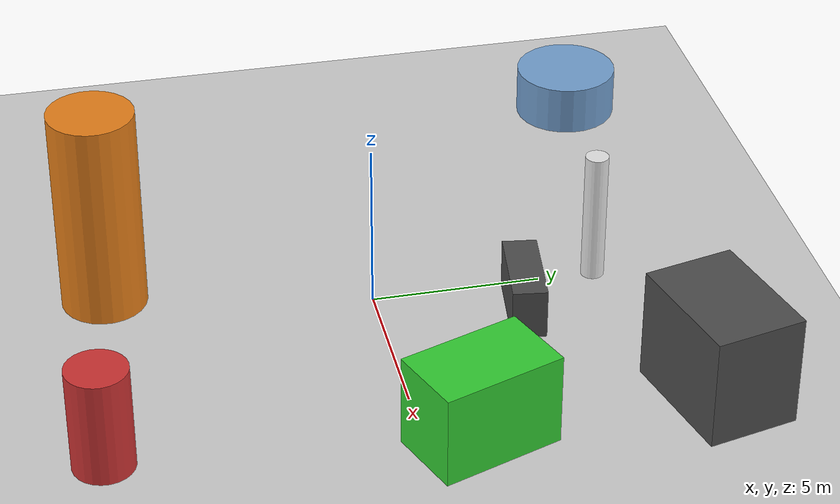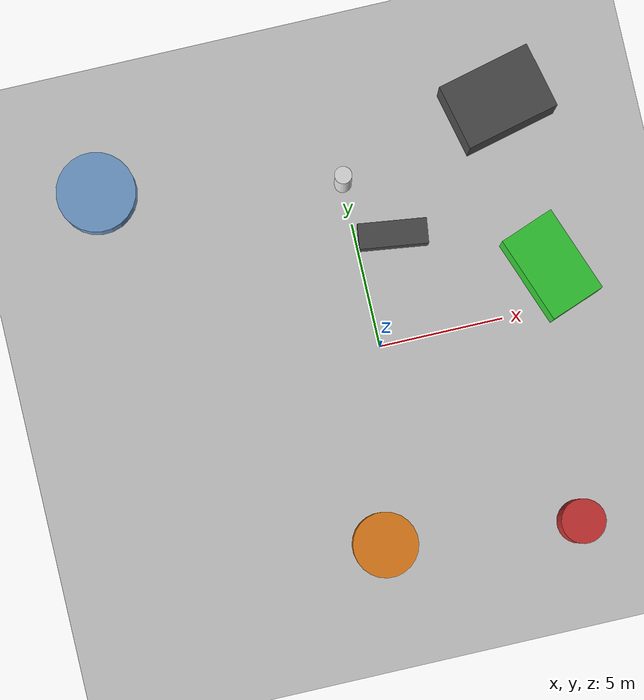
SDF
<?xml version='1.0'?>
<sdf version='1.6'>
  <world name='default'>
    <!-- Sun light -->
    <light name='sun' type='directional'>
      <cast_shadows>1</cast_shadows>
      <pose>0 0 10 0 0 0</pose>
      <diffuse>0.8 0.8 0.8 1</diffuse>
      <specular>0.2 0.2 0.2 1</specular>
      <attenuation>
        <range>1000</range>
        <constant>0.9</constant>
        <linear>0.01</linear>
        <quadratic>0.001</quadratic>
      </attenuation>
      <direction>-0.5 0.1 -0.9</direction>
    </light>

    <!-- Ground plane -->
    <model name='ground_plane'>
      <static>1</static>
      <link name='link'>
        <collision name='collision'>
          <geometry>
            <plane>
              <normal>0 0 1</normal>
              <size>100 100</size>
            </plane>
          </geometry>
          <surface>
            <contact>
              <collide_bitmask>65535</collide_bitmask>
              <ode/>
            </contact>
            <friction>
              <ode>
                <mu>100</mu>
                <mu2>50</mu2>
              </ode>
              <torsional><ode/></torsional>
            </friction>
            <bounce/>
          </surface>
          <max_contacts>10</max_contacts>
        </collision>
        <visual name='visual'>
          <cast_shadows>0</cast_shadows>
          <geometry>
            <plane>
              <normal>0 0 1</normal>
              <size>100 100</size>
            </plane>
          </geometry>
          <material>
            <script>
              <uri>file://media/materials/scripts/gazebo.material</uri>
              <n>Gazebo/Grey</n>
            </script>
          </material>
        </visual>
      </link>
    </model>

    <!-- Environment -->
    <magnetic_field>6e-06 2.3e-05 -4.2e-05</magnetic_field>
    <atmosphere type='adiabatic'/>
    <physics name='default_physics' default='0' type='ode'>
      <gravity>0 0 -9.8</gravity>
      <max_step_size>0.004</max_step_size>
      <real_time_factor>1</real_time_factor>
      <real_time_update_rate>250</real_time_update_rate>
    </physics>
    <scene>
      <ambient>0.4 0.4 0.4 1</ambient>
      <background>0.7 0.7 0.7 1</background>
      <shadows>1</shadows>
    </scene>
    <wind/>
    <spherical_coordinates>
      <surface_model>EARTH_WGS84</surface_model>
      <latitude_deg>0</latitude_deg>
      <longitude_deg>0</longitude_deg>
      <elevation>0</elevation>
      <heading_deg>0</heading_deg>
    </spherical_coordinates>

    <!-- ============ OBSTACLES (7) ============ -->
    <model name='obs_00'>
      <static>1</static>
      <link name='link'>
        <visual name='visual'>
          <geometry>
            <cylinder>
              <radius>0.3458</radius>
              <length>4.0497</length>
            </cylinder>
          </geometry>
          <material>
            <script>
              <n>Gazebo/White</n>
              <uri>file://media/materials/scripts/gazebo.material</uri>
            </script>
            <ambient>0.9 0.9 0.9 1</ambient>
          </material>
        </visual>
        <collision name='collision'>
          <geometry>
            <cylinder>
              <radius>0.3458</radius>
              <length>4.0497</length>
            </cylinder>
          </geometry>
          <max_contacts>10</max_contacts>
          <surface>
            <contact><ode/></contact>
            <bounce/>
            <friction>
              <ode><mu>1</mu><mu2>1</mu2></ode>
              <torsional><ode/></torsional>
            </friction>
          </surface>
        </collision>
      </link>
      <pose>0.0052 6.6671 2.0249 0 0 1.3720</pose>
    </model>

    <model name='obs_01'>
      <static>1</static>
      <link name='link'>
        <visual name='visual'>
          <geometry>
            <cylinder>
              <radius>0.8822</radius>
              <length>3.1719</length>
            </cylinder>
          </geometry>
          <material>
            <script>
              <n>Gazebo/Red</n>
              <uri>file://media/materials/scripts/gazebo.material</uri>
            </script>
            <ambient>0.8 0.2 0.2 1</ambient>
          </material>
        </visual>
        <collision name='collision'>
          <geometry>
            <cylinder>
              <radius>0.8822</radius>
              <length>3.1719</length>
            </cylinder>
          </geometry>
          <max_contacts>10</max_contacts>
          <surface>
            <contact><ode/></contact>
            <bounce/>
            <friction>
              <ode><mu>1</mu><mu2>1</mu2></ode>
              <torsional><ode/></torsional>
            </friction>
          </surface>
        </collision>
      </link>
      <pose>6.1240 -8.5585 1.5860 0 0 1.6461</pose>
    </model>

    <model name='obs_02'>
      <static>1</static>
      <link name='link'>
        <visual name='visual'>
          <geometry>
            <cylinder>
              <radius>1.5914</radius>
              <length>1.5347</length>
            </cylinder>
          </geometry>
          <material>
            <script>
              <n>Gazebo/Blue</n>
              <uri>file://media/materials/scripts/gazebo.material</uri>
            </script>
            <ambient>0.447 0.624 0.812 1</ambient>
          </material>
        </visual>
        <collision name='collision'>
          <geometry>
            <cylinder>
              <radius>1.5914</radius>
              <length>1.5347</length>
            </cylinder>
          </geometry>
          <max_contacts>10</max_contacts>
          <surface>
            <contact><ode/></contact>
            <bounce/>
            <friction>
              <ode><mu>1</mu><mu2>1</mu2></ode>
              <torsional><ode/></torsional>
            </friction>
          </surface>
        </collision>
      </link>
      <pose>-9.6252 8.4232 0.7673 0 0 0.6961</pose>
    </model>

    <model name='obs_03'>
      <static>1</static>
      <link name='link'>
        <visual name='visual'>
          <geometry>
            <box>
              <size>2.2848 3.6707 2.7469</size>
            </box>
          </geometry>
          <material>
            <script>
              <n>Gazebo/Green</n>
              <uri>file://media/materials/scripts/gazebo.material</uri>
            </script>
            <ambient>0.2 0.8 0.2 1</ambient>
          </material>
        </visual>
        <collision name='collision'>
          <geometry>
            <box>
              <size>2.2848 3.6707 2.7469</size>
            </box>
          </geometry>
          <max_contacts>10</max_contacts>
          <surface>
            <contact><ode/></contact>
            <bounce/>
            <friction>
              <ode><mu>1</mu><mu2>1</mu2></ode>
              <torsional><ode/></torsional>
            </friction>
          </surface>
        </collision>
      </link>
      <pose>7.2422 1.5152 1.3734 0 0 0.3582</pose>
    </model>

    <model name='obs_04'>
      <static>1</static>
      <link name='link'>
        <visual name='visual'>
          <geometry>
            <box>
              <size>2.7591 1.0169 1.5140</size>
            </box>
          </geometry>
          <material>
            <script>
              <n>Gazebo/DarkGrey</n>
              <uri>file://media/materials/scripts/gazebo.material</uri>
            </script>
            <ambient>0.3 0.3 0.3 1</ambient>
          </material>
        </visual>
        <collision name='collision'>
          <geometry>
            <box>
              <size>2.7591 1.0169 1.5140</size>
            </box>
          </geometry>
          <max_contacts>10</max_contacts>
          <surface>
            <contact><ode/></contact>
            <bounce/>
            <friction>
              <ode><mu>1</mu><mu2>1</mu2></ode>
              <torsional><ode/></torsional>
            </friction>
          </surface>
        </collision>
      </link>
      <pose>1.4680 4.1900 0.7570 0 0 3.0103</pose>
    </model>

    <model name='obs_05'>
      <static>1</static>
      <link name='link'>
        <visual name='visual'>
          <geometry>
            <cylinder>
              <radius>1.2644</radius>
              <length>6.3215</length>
            </cylinder>
          </geometry>
          <material>
            <script>
              <n>Gazebo/Orange</n>
              <uri>file://media/materials/scripts/gazebo.material</uri>
            </script>
            <ambient>0.9 0.5 0.1 1</ambient>
          </material>
        </visual>
        <collision name='collision'>
          <geometry>
            <cylinder>
              <radius>1.2644</radius>
              <length>6.3215</length>
            </cylinder>
          </geometry>
          <max_contacts>10</max_contacts>
          <surface>
            <contact><ode/></contact>
            <bounce/>
            <friction>
              <ode><mu>1</mu><mu2>1</mu2></ode>
              <torsional><ode/></torsional>
            </friction>
          </surface>
        </collision>
      </link>
      <pose>-1.6461 -7.6965 3.1608 0 0 0.6197</pose>
    </model>

    <model name='obs_06'>
      <static>1</static>
      <link name='link'>
        <visual name='visual'>
          <geometry>
            <box>
              <size>3.8295 2.6978 3.3198</size>
            </box>
          </geometry>
          <material>
            <script>
              <n>Gazebo/DarkGrey</n>
              <uri>file://media/materials/scripts/gazebo.material</uri>
            </script>
            <ambient>0.3 0.3 0.3 1</ambient>
          </material>
        </visual>
        <collision name='collision'>
          <geometry>
            <box>
              <size>3.8295 2.6978 3.3198</size>
            </box>
          </geometry>
          <max_contacts>10</max_contacts>
          <surface>
            <contact><ode/></contact>
            <bounce/>
            <friction>
              <ode><mu>1</mu><mu2>1</mu2></ode>
              <torsional><ode/></torsional>
            </friction>
          </surface>
        </collision>
      </link>
      <pose>6.6405 8.3954 1.6599 0 0 0.2367</pose>
    </model>

    <!-- GUI camera -->
    <gui fullscreen='0'>
      <camera name='user_camera'>
        <pose>-15 0 18 0 0.85 0.15</pose>
        <view_controller>orbit</view_controller>
        <projection_type>perspective</projection_type>
      </camera>
    </gui>
  </world>
</sdf>
